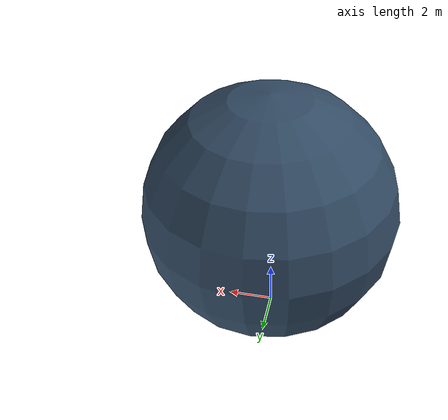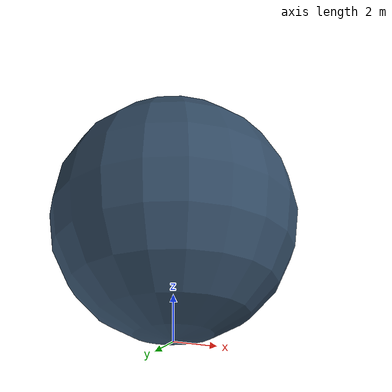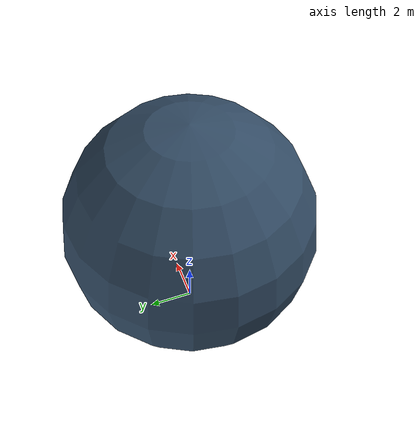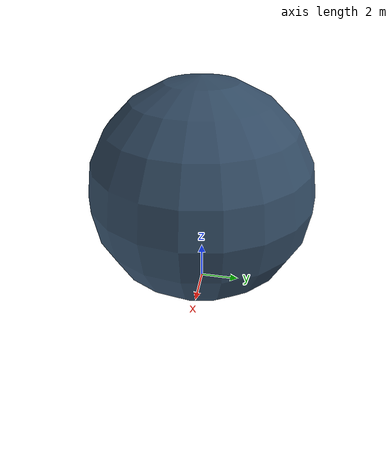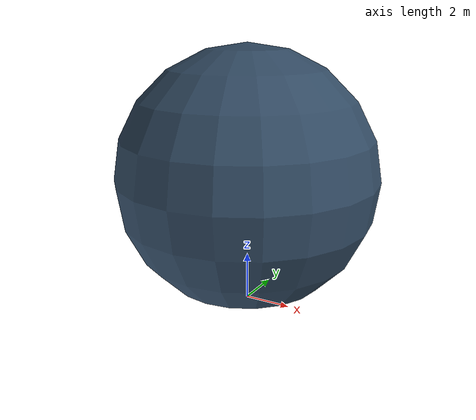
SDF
<?xml version='1.0' ?>

<sdf version='1.6'>
  <model name='sphere'>
    <pose>0 0 5.5 0 0 0</pose>
    <link name='sphere_link'>
      <pose>0 0 0 0 0 0</pose>
      <inertial>
       <pose>0 0 0 0 0 0</pose>
        <mass>57.833</mass>
        <!-- TODO(liang.fok): Make these inertia values realistic. -->
        <inertia>
          <ixx>2.71553</ixx>
          <ixy>0</ixy>
          <ixz>0</ixz>
          <iyy>68.9</iyy>
          <iyz>0</iyz>
          <izz>71.6063</izz>
        </inertia>
      </inertial>
      <visual name='sphere_link_visual'>
        <pose>0 0 0 0 0 0</pose>
        <geometry>
          <sphere>
            <radius>5.5</radius>
          </sphere>
        </geometry>
        <material>
          <diffuse>0.2 0.3 0.4 0.9</diffuse>
        </material>
      </visual>
      <collision name='sphere_link_collision'>
        <laser_retro>0</laser_retro>
        <max_contacts>10</max_contacts>
        <pose>0 0 0 0 0 0</pose>
        <geometry>
          <sphere>
            <radius>5.5</radius>
          </sphere>
        </geometry>
      </collision>
    </link>
  </model>
</sdf>
